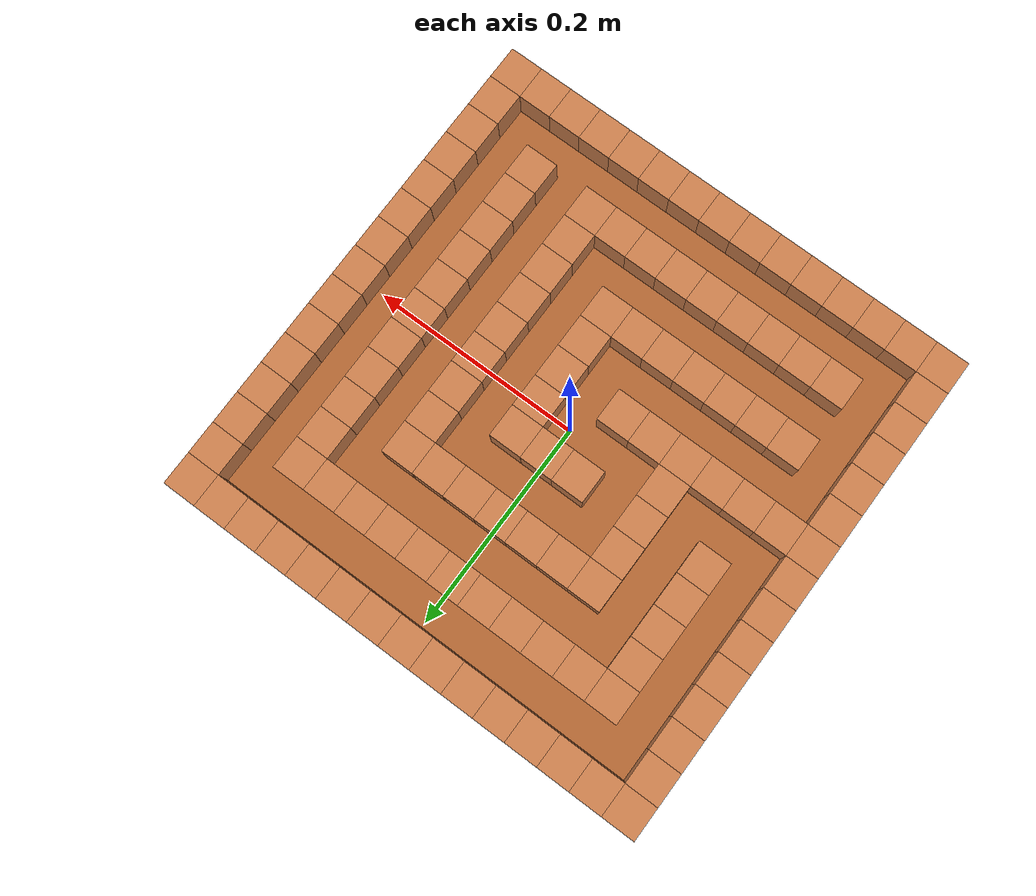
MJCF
<mujoco model="generated_maze">
    <asset>
        <material name="wall_mat" rgba="0.8 0.5 0.3 1" shininess="0.1"/>
        <material name="floor_mat" rgba="0.7 0.4 0.2 1" shininess="0.0"/>
    </asset>

    <worldbody>
        <body name="root_wrapper" pos="0 0 0">
            <body name="object" pos="0 0 0">
                <geom name="floor" type="box" group="0"
                      size="0.2363 0.2363 0.005"
                      material="floor_mat" pos="0 0 0"/>
                <geom name="wall_0_0" type="box" group="0"
                      size="0.0158 0.0158 0.0180"
                      material="wall_mat"
                      pos="-0.2205 0.2205 0.0180"/>
                <geom name="wall_0_1" type="box" group="0"
                      size="0.0158 0.0158 0.0180"
                      material="wall_mat"
                      pos="-0.1890 0.2205 0.0180"/>
                <geom name="wall_0_2" type="box" group="0"
                      size="0.0158 0.0158 0.0180"
                      material="wall_mat"
                      pos="-0.1575 0.2205 0.0180"/>
                <geom name="wall_0_3" type="box" group="0"
                      size="0.0158 0.0158 0.0180"
                      material="wall_mat"
                      pos="-0.1260 0.2205 0.0180"/>
                <geom name="wall_0_4" type="box" group="0"
                      size="0.0158 0.0158 0.0180"
                      material="wall_mat"
                      pos="-0.0945 0.2205 0.0180"/>
                <geom name="wall_0_5" type="box" group="0"
                      size="0.0158 0.0158 0.0180"
                      material="wall_mat"
                      pos="-0.0630 0.2205 0.0180"/>
                <geom name="wall_0_6" type="box" group="0"
                      size="0.0158 0.0158 0.0180"
                      material="wall_mat"
                      pos="-0.0315 0.2205 0.0180"/>
                <geom name="wall_0_7" type="box" group="0"
                      size="0.0158 0.0158 0.0180"
                      material="wall_mat"
                      pos="0.0000 0.2205 0.0180"/>
                <geom name="wall_0_8" type="box" group="0"
                      size="0.0158 0.0158 0.0180"
                      material="wall_mat"
                      pos="0.0315 0.2205 0.0180"/>
                <geom name="wall_0_9" type="box" group="0"
                      size="0.0158 0.0158 0.0180"
                      material="wall_mat"
                      pos="0.0630 0.2205 0.0180"/>
                <geom name="wall_0_10" type="box" group="0"
                      size="0.0158 0.0158 0.0180"
                      material="wall_mat"
                      pos="0.0945 0.2205 0.0180"/>
                <geom name="wall_0_11" type="box" group="0"
                      size="0.0158 0.0158 0.0180"
                      material="wall_mat"
                      pos="0.1260 0.2205 0.0180"/>
                <geom name="wall_0_12" type="box" group="0"
                      size="0.0158 0.0158 0.0180"
                      material="wall_mat"
                      pos="0.1575 0.2205 0.0180"/>
                <geom name="wall_0_13" type="box" group="0"
                      size="0.0158 0.0158 0.0180"
                      material="wall_mat"
                      pos="0.1890 0.2205 0.0180"/>
                <geom name="wall_0_14" type="box" group="0"
                      size="0.0158 0.0158 0.0180"
                      material="wall_mat"
                      pos="0.2205 0.2205 0.0180"/>
                <geom name="wall_1_0" type="box" group="0"
                      size="0.0158 0.0158 0.0180"
                      material="wall_mat"
                      pos="-0.2205 0.1890 0.0180"/>
                <geom name="wall_1_14" type="box" group="0"
                      size="0.0158 0.0158 0.0180"
                      material="wall_mat"
                      pos="0.2205 0.1890 0.0180"/>
                <geom name="wall_2_0" type="box" group="0"
                      size="0.0158 0.0158 0.0180"
                      material="wall_mat"
                      pos="-0.2205 0.1575 0.0180"/>
                <geom name="wall_2_2" type="box" group="0"
                      size="0.0158 0.0158 0.0180"
                      material="wall_mat"
                      pos="-0.1575 0.1575 0.0180"/>
                <geom name="wall_2_3" type="box" group="0"
                      size="0.0158 0.0158 0.0180"
                      material="wall_mat"
                      pos="-0.1260 0.1575 0.0180"/>
                <geom name="wall_2_4" type="box" group="0"
                      size="0.0158 0.0158 0.0180"
                      material="wall_mat"
                      pos="-0.0945 0.1575 0.0180"/>
                <geom name="wall_2_5" type="box" group="0"
                      size="0.0158 0.0158 0.0180"
                      material="wall_mat"
                      pos="-0.0630 0.1575 0.0180"/>
                <geom name="wall_2_6" type="box" group="0"
                      size="0.0158 0.0158 0.0180"
                      material="wall_mat"
                      pos="-0.0315 0.1575 0.0180"/>
                <geom name="wall_2_7" type="box" group="0"
                      size="0.0158 0.0158 0.0180"
                      material="wall_mat"
                      pos="0.0000 0.1575 0.0180"/>
                <geom name="wall_2_8" type="box" group="0"
                      size="0.0158 0.0158 0.0180"
                      material="wall_mat"
                      pos="0.0315 0.1575 0.0180"/>
                <geom name="wall_2_9" type="box" group="0"
                      size="0.0158 0.0158 0.0180"
                      material="wall_mat"
                      pos="0.0630 0.1575 0.0180"/>
                <geom name="wall_2_10" type="box" group="0"
                      size="0.0158 0.0158 0.0180"
                      material="wall_mat"
                      pos="0.0945 0.1575 0.0180"/>
                <geom name="wall_2_11" type="box" group="0"
                      size="0.0158 0.0158 0.0180"
                      material="wall_mat"
                      pos="0.1260 0.1575 0.0180"/>
                <geom name="wall_2_12" type="box" group="0"
                      size="0.0158 0.0158 0.0180"
                      material="wall_mat"
                      pos="0.1575 0.1575 0.0180"/>
                <geom name="wall_2_14" type="box" group="0"
                      size="0.0158 0.0158 0.0180"
                      material="wall_mat"
                      pos="0.2205 0.1575 0.0180"/>
                <geom name="wall_3_0" type="box" group="0"
                      size="0.0158 0.0158 0.0180"
                      material="wall_mat"
                      pos="-0.2205 0.1260 0.0180"/>
                <geom name="wall_3_2" type="box" group="0"
                      size="0.0158 0.0158 0.0180"
                      material="wall_mat"
                      pos="-0.1575 0.1260 0.0180"/>
                <geom name="wall_3_12" type="box" group="0"
                      size="0.0158 0.0158 0.0180"
                      material="wall_mat"
                      pos="0.1575 0.1260 0.0180"/>
                <geom name="wall_3_14" type="box" group="0"
                      size="0.0158 0.0158 0.0180"
                      material="wall_mat"
                      pos="0.2205 0.1260 0.0180"/>
                <geom name="wall_4_0" type="box" group="0"
                      size="0.0158 0.0158 0.0180"
                      material="wall_mat"
                      pos="-0.2205 0.0945 0.0180"/>
                <geom name="wall_4_2" type="box" group="0"
                      size="0.0158 0.0158 0.0180"
                      material="wall_mat"
                      pos="-0.1575 0.0945 0.0180"/>
                <geom name="wall_4_4" type="box" group="0"
                      size="0.0158 0.0158 0.0180"
                      material="wall_mat"
                      pos="-0.0945 0.0945 0.0180"/>
                <geom name="wall_4_5" type="box" group="0"
                      size="0.0158 0.0158 0.0180"
                      material="wall_mat"
                      pos="-0.0630 0.0945 0.0180"/>
                <geom name="wall_4_6" type="box" group="0"
                      size="0.0158 0.0158 0.0180"
                      material="wall_mat"
                      pos="-0.0315 0.0945 0.0180"/>
                <geom name="wall_4_7" type="box" group="0"
                      size="0.0158 0.0158 0.0180"
                      material="wall_mat"
                      pos="0.0000 0.0945 0.0180"/>
                <geom name="wall_4_8" type="box" group="0"
                      size="0.0158 0.0158 0.0180"
                      material="wall_mat"
                      pos="0.0315 0.0945 0.0180"/>
                <geom name="wall_4_9" type="box" group="0"
                      size="0.0158 0.0158 0.0180"
                      material="wall_mat"
                      pos="0.0630 0.0945 0.0180"/>
                <geom name="wall_4_10" type="box" group="0"
                      size="0.0158 0.0158 0.0180"
                      material="wall_mat"
                      pos="0.0945 0.0945 0.0180"/>
                <geom name="wall_4_12" type="box" group="0"
                      size="0.0158 0.0158 0.0180"
                      material="wall_mat"
                      pos="0.1575 0.0945 0.0180"/>
                <geom name="wall_4_14" type="box" group="0"
                      size="0.0158 0.0158 0.0180"
                      material="wall_mat"
                      pos="0.2205 0.0945 0.0180"/>
                <geom name="wall_5_0" type="box" group="0"
                      size="0.0158 0.0158 0.0180"
                      material="wall_mat"
                      pos="-0.2205 0.0630 0.0180"/>
                <geom name="wall_5_2" type="box" group="0"
                      size="0.0158 0.0158 0.0180"
                      material="wall_mat"
                      pos="-0.1575 0.0630 0.0180"/>
                <geom name="wall_5_4" type="box" group="0"
                      size="0.0158 0.0158 0.0180"
                      material="wall_mat"
                      pos="-0.0945 0.0630 0.0180"/>
                <geom name="wall_5_10" type="box" group="0"
                      size="0.0158 0.0158 0.0180"
                      material="wall_mat"
                      pos="0.0945 0.0630 0.0180"/>
                <geom name="wall_5_12" type="box" group="0"
                      size="0.0158 0.0158 0.0180"
                      material="wall_mat"
                      pos="0.1575 0.0630 0.0180"/>
                <geom name="wall_5_14" type="box" group="0"
                      size="0.0158 0.0158 0.0180"
                      material="wall_mat"
                      pos="0.2205 0.0630 0.0180"/>
                <geom name="wall_6_0" type="box" group="0"
                      size="0.0158 0.0158 0.0180"
                      material="wall_mat"
                      pos="-0.2205 0.0315 0.0180"/>
                <geom name="wall_6_2" type="box" group="0"
                      size="0.0158 0.0158 0.0180"
                      material="wall_mat"
                      pos="-0.1575 0.0315 0.0180"/>
                <geom name="wall_6_4" type="box" group="0"
                      size="0.0158 0.0158 0.0180"
                      material="wall_mat"
                      pos="-0.0945 0.0315 0.0180"/>
                <geom name="wall_6_6" type="box" group="0"
                      size="0.0158 0.0158 0.0180"
                      material="wall_mat"
                      pos="-0.0315 0.0315 0.0180"/>
                <geom name="wall_6_7" type="box" group="0"
                      size="0.0158 0.0158 0.0180"
                      material="wall_mat"
                      pos="0.0000 0.0315 0.0180"/>
                <geom name="wall_6_8" type="box" group="0"
                      size="0.0158 0.0158 0.0180"
                      material="wall_mat"
                      pos="0.0315 0.0315 0.0180"/>
                <geom name="wall_6_10" type="box" group="0"
                      size="0.0158 0.0158 0.0180"
                      material="wall_mat"
                      pos="0.0945 0.0315 0.0180"/>
                <geom name="wall_6_12" type="box" group="0"
                      size="0.0158 0.0158 0.0180"
                      material="wall_mat"
                      pos="0.1575 0.0315 0.0180"/>
                <geom name="wall_6_14" type="box" group="0"
                      size="0.0158 0.0158 0.0180"
                      material="wall_mat"
                      pos="0.2205 0.0315 0.0180"/>
                <geom name="wall_7_0" type="box" group="0"
                      size="0.0158 0.0158 0.0180"
                      material="wall_mat"
                      pos="-0.2205 0.0000 0.0180"/>
                <geom name="wall_7_4" type="box" group="0"
                      size="0.0158 0.0158 0.0180"
                      material="wall_mat"
                      pos="-0.0945 0.0000 0.0180"/>
                <geom name="wall_7_8" type="box" group="0"
                      size="0.0158 0.0158 0.0180"
                      material="wall_mat"
                      pos="0.0315 0.0000 0.0180"/>
                <geom name="wall_7_10" type="box" group="0"
                      size="0.0158 0.0158 0.0180"
                      material="wall_mat"
                      pos="0.0945 0.0000 0.0180"/>
                <geom name="wall_7_12" type="box" group="0"
                      size="0.0158 0.0158 0.0180"
                      material="wall_mat"
                      pos="0.1575 0.0000 0.0180"/>
                <geom name="wall_7_14" type="box" group="0"
                      size="0.0158 0.0158 0.0180"
                      material="wall_mat"
                      pos="0.2205 0.0000 0.0180"/>
                <geom name="wall_8_0" type="box" group="0"
                      size="0.0158 0.0158 0.0180"
                      material="wall_mat"
                      pos="-0.2205 -0.0315 0.0180"/>
                <geom name="wall_8_1" type="box" group="0"
                      size="0.0158 0.0158 0.0180"
                      material="wall_mat"
                      pos="-0.1890 -0.0315 0.0180"/>
                <geom name="wall_8_2" type="box" group="0"
                      size="0.0158 0.0158 0.0180"
                      material="wall_mat"
                      pos="-0.1575 -0.0315 0.0180"/>
                <geom name="wall_8_3" type="box" group="0"
                      size="0.0158 0.0158 0.0180"
                      material="wall_mat"
                      pos="-0.1260 -0.0315 0.0180"/>
                <geom name="wall_8_4" type="box" group="0"
                      size="0.0158 0.0158 0.0180"
                      material="wall_mat"
                      pos="-0.0945 -0.0315 0.0180"/>
                <geom name="wall_8_5" type="box" group="0"
                      size="0.0158 0.0158 0.0180"
                      material="wall_mat"
                      pos="-0.0630 -0.0315 0.0180"/>
                <geom name="wall_8_6" type="box" group="0"
                      size="0.0158 0.0158 0.0180"
                      material="wall_mat"
                      pos="-0.0315 -0.0315 0.0180"/>
                <geom name="wall_8_8" type="box" group="0"
                      size="0.0158 0.0158 0.0180"
                      material="wall_mat"
                      pos="0.0315 -0.0315 0.0180"/>
                <geom name="wall_8_10" type="box" group="0"
                      size="0.0158 0.0158 0.0180"
                      material="wall_mat"
                      pos="0.0945 -0.0315 0.0180"/>
                <geom name="wall_8_12" type="box" group="0"
                      size="0.0158 0.0158 0.0180"
                      material="wall_mat"
                      pos="0.1575 -0.0315 0.0180"/>
                <geom name="wall_8_14" type="box" group="0"
                      size="0.0158 0.0158 0.0180"
                      material="wall_mat"
                      pos="0.2205 -0.0315 0.0180"/>
                <geom name="wall_9_0" type="box" group="0"
                      size="0.0158 0.0158 0.0180"
                      material="wall_mat"
                      pos="-0.2205 -0.0630 0.0180"/>
                <geom name="wall_9_8" type="box" group="0"
                      size="0.0158 0.0158 0.0180"
                      material="wall_mat"
                      pos="0.0315 -0.0630 0.0180"/>
                <geom name="wall_9_10" type="box" group="0"
                      size="0.0158 0.0158 0.0180"
                      material="wall_mat"
                      pos="0.0945 -0.0630 0.0180"/>
                <geom name="wall_9_12" type="box" group="0"
                      size="0.0158 0.0158 0.0180"
                      material="wall_mat"
                      pos="0.1575 -0.0630 0.0180"/>
                <geom name="wall_9_14" type="box" group="0"
                      size="0.0158 0.0158 0.0180"
                      material="wall_mat"
                      pos="0.2205 -0.0630 0.0180"/>
                <geom name="wall_10_0" type="box" group="0"
                      size="0.0158 0.0158 0.0180"
                      material="wall_mat"
                      pos="-0.2205 -0.0945 0.0180"/>
                <geom name="wall_10_2" type="box" group="0"
                      size="0.0158 0.0158 0.0180"
                      material="wall_mat"
                      pos="-0.1575 -0.0945 0.0180"/>
                <geom name="wall_10_3" type="box" group="0"
                      size="0.0158 0.0158 0.0180"
                      material="wall_mat"
                      pos="-0.1260 -0.0945 0.0180"/>
                <geom name="wall_10_4" type="box" group="0"
                      size="0.0158 0.0158 0.0180"
                      material="wall_mat"
                      pos="-0.0945 -0.0945 0.0180"/>
                <geom name="wall_10_5" type="box" group="0"
                      size="0.0158 0.0158 0.0180"
                      material="wall_mat"
                      pos="-0.0630 -0.0945 0.0180"/>
                <geom name="wall_10_6" type="box" group="0"
                      size="0.0158 0.0158 0.0180"
                      material="wall_mat"
                      pos="-0.0315 -0.0945 0.0180"/>
                <geom name="wall_10_7" type="box" group="0"
                      size="0.0158 0.0158 0.0180"
                      material="wall_mat"
                      pos="0.0000 -0.0945 0.0180"/>
                <geom name="wall_10_8" type="box" group="0"
                      size="0.0158 0.0158 0.0180"
                      material="wall_mat"
                      pos="0.0315 -0.0945 0.0180"/>
                <geom name="wall_10_10" type="box" group="0"
                      size="0.0158 0.0158 0.0180"
                      material="wall_mat"
                      pos="0.0945 -0.0945 0.0180"/>
                <geom name="wall_10_12" type="box" group="0"
                      size="0.0158 0.0158 0.0180"
                      material="wall_mat"
                      pos="0.1575 -0.0945 0.0180"/>
                <geom name="wall_10_14" type="box" group="0"
                      size="0.0158 0.0158 0.0180"
                      material="wall_mat"
                      pos="0.2205 -0.0945 0.0180"/>
                <geom name="wall_11_0" type="box" group="0"
                      size="0.0158 0.0158 0.0180"
                      material="wall_mat"
                      pos="-0.2205 -0.1260 0.0180"/>
                <geom name="wall_11_10" type="box" group="0"
                      size="0.0158 0.0158 0.0180"
                      material="wall_mat"
                      pos="0.0945 -0.1260 0.0180"/>
                <geom name="wall_11_12" type="box" group="0"
                      size="0.0158 0.0158 0.0180"
                      material="wall_mat"
                      pos="0.1575 -0.1260 0.0180"/>
                <geom name="wall_11_14" type="box" group="0"
                      size="0.0158 0.0158 0.0180"
                      material="wall_mat"
                      pos="0.2205 -0.1260 0.0180"/>
                <geom name="wall_12_0" type="box" group="0"
                      size="0.0158 0.0158 0.0180"
                      material="wall_mat"
                      pos="-0.2205 -0.1575 0.0180"/>
                <geom name="wall_12_2" type="box" group="0"
                      size="0.0158 0.0158 0.0180"
                      material="wall_mat"
                      pos="-0.1575 -0.1575 0.0180"/>
                <geom name="wall_12_3" type="box" group="0"
                      size="0.0158 0.0158 0.0180"
                      material="wall_mat"
                      pos="-0.1260 -0.1575 0.0180"/>
                <geom name="wall_12_4" type="box" group="0"
                      size="0.0158 0.0158 0.0180"
                      material="wall_mat"
                      pos="-0.0945 -0.1575 0.0180"/>
                <geom name="wall_12_5" type="box" group="0"
                      size="0.0158 0.0158 0.0180"
                      material="wall_mat"
                      pos="-0.0630 -0.1575 0.0180"/>
                <geom name="wall_12_6" type="box" group="0"
                      size="0.0158 0.0158 0.0180"
                      material="wall_mat"
                      pos="-0.0315 -0.1575 0.0180"/>
                <geom name="wall_12_7" type="box" group="0"
                      size="0.0158 0.0158 0.0180"
                      material="wall_mat"
                      pos="0.0000 -0.1575 0.0180"/>
                <geom name="wall_12_8" type="box" group="0"
                      size="0.0158 0.0158 0.0180"
                      material="wall_mat"
                      pos="0.0315 -0.1575 0.0180"/>
                <geom name="wall_12_9" type="box" group="0"
                      size="0.0158 0.0158 0.0180"
                      material="wall_mat"
                      pos="0.0630 -0.1575 0.0180"/>
                <geom name="wall_12_10" type="box" group="0"
                      size="0.0158 0.0158 0.0180"
                      material="wall_mat"
                      pos="0.0945 -0.1575 0.0180"/>
                <geom name="wall_12_12" type="box" group="0"
                      size="0.0158 0.0158 0.0180"
                      material="wall_mat"
                      pos="0.1575 -0.1575 0.0180"/>
                <geom name="wall_12_14" type="box" group="0"
                      size="0.0158 0.0158 0.0180"
                      material="wall_mat"
                      pos="0.2205 -0.1575 0.0180"/>
                <geom name="wall_13_0" type="box" group="0"
                      size="0.0158 0.0158 0.0180"
                      material="wall_mat"
                      pos="-0.2205 -0.1890 0.0180"/>
                <geom name="wall_13_14" type="box" group="0"
                      size="0.0158 0.0158 0.0180"
                      material="wall_mat"
                      pos="0.2205 -0.1890 0.0180"/>
                <geom name="wall_14_0" type="box" group="0"
                      size="0.0158 0.0158 0.0180"
                      material="wall_mat"
                      pos="-0.2205 -0.2205 0.0180"/>
                <geom name="wall_14_1" type="box" group="0"
                      size="0.0158 0.0158 0.0180"
                      material="wall_mat"
                      pos="-0.1890 -0.2205 0.0180"/>
                <geom name="wall_14_2" type="box" group="0"
                      size="0.0158 0.0158 0.0180"
                      material="wall_mat"
                      pos="-0.1575 -0.2205 0.0180"/>
                <geom name="wall_14_3" type="box" group="0"
                      size="0.0158 0.0158 0.0180"
                      material="wall_mat"
                      pos="-0.1260 -0.2205 0.0180"/>
                <geom name="wall_14_4" type="box" group="0"
                      size="0.0158 0.0158 0.0180"
                      material="wall_mat"
                      pos="-0.0945 -0.2205 0.0180"/>
                <geom name="wall_14_5" type="box" group="0"
                      size="0.0158 0.0158 0.0180"
                      material="wall_mat"
                      pos="-0.0630 -0.2205 0.0180"/>
                <geom name="wall_14_6" type="box" group="0"
                      size="0.0158 0.0158 0.0180"
                      material="wall_mat"
                      pos="-0.0315 -0.2205 0.0180"/>
                <geom name="wall_14_7" type="box" group="0"
                      size="0.0158 0.0158 0.0180"
                      material="wall_mat"
                      pos="0.0000 -0.2205 0.0180"/>
                <geom name="wall_14_8" type="box" group="0"
                      size="0.0158 0.0158 0.0180"
                      material="wall_mat"
                      pos="0.0315 -0.2205 0.0180"/>
                <geom name="wall_14_9" type="box" group="0"
                      size="0.0158 0.0158 0.0180"
                      material="wall_mat"
                      pos="0.0630 -0.2205 0.0180"/>
                <geom name="wall_14_10" type="box" group="0"
                      size="0.0158 0.0158 0.0180"
                      material="wall_mat"
                      pos="0.0945 -0.2205 0.0180"/>
                <geom name="wall_14_11" type="box" group="0"
                      size="0.0158 0.0158 0.0180"
                      material="wall_mat"
                      pos="0.1260 -0.2205 0.0180"/>
                <geom name="wall_14_12" type="box" group="0"
                      size="0.0158 0.0158 0.0180"
                      material="wall_mat"
                      pos="0.1575 -0.2205 0.0180"/>
                <geom name="wall_14_13" type="box" group="0"
                      size="0.0158 0.0158 0.0180"
                      material="wall_mat"
                      pos="0.1890 -0.2205 0.0180"/>
                <geom name="wall_14_14" type="box" group="0"
                      size="0.0158 0.0158 0.0180"
                      material="wall_mat"
                      pos="0.2205 -0.2205 0.0180"/>
            </body>
        </body>
    </worldbody>
</mujoco>
